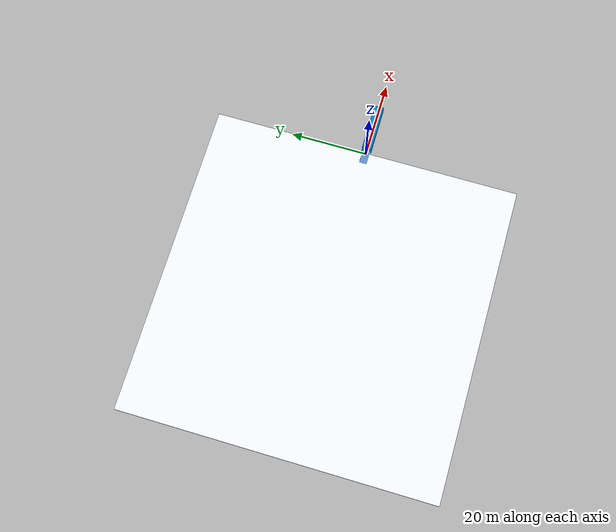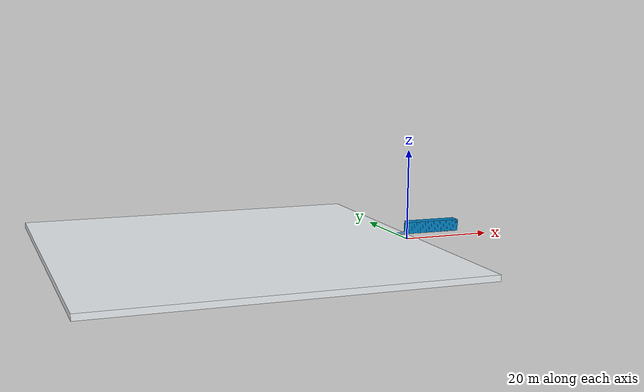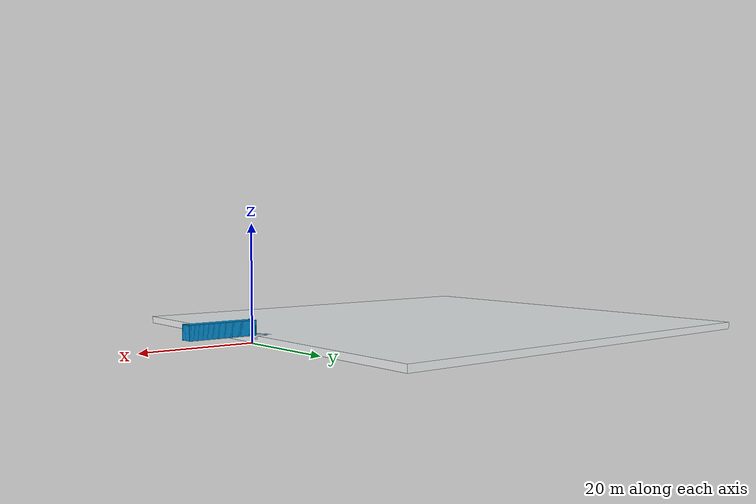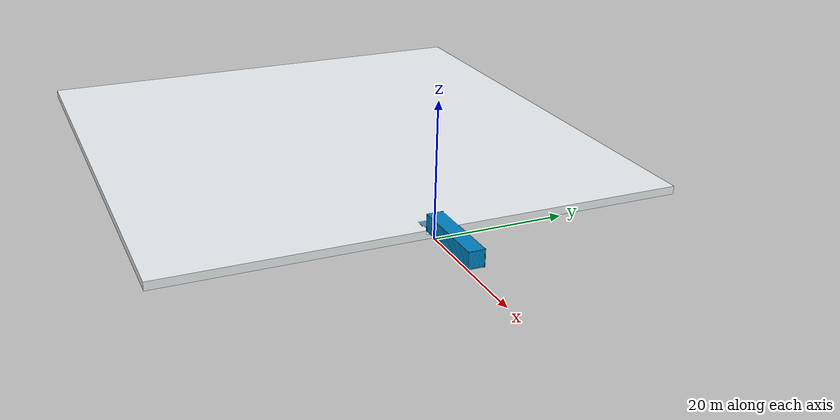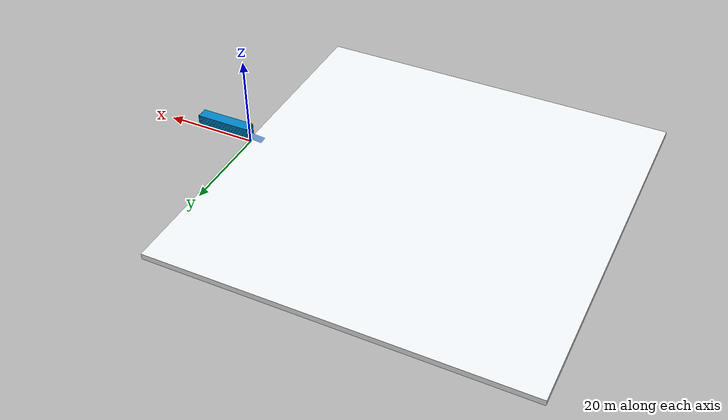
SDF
<?xml version="1.0" ?>
<sdf version="1.6">
  <model name="warehouse">
    <static>true</static>
    <link name="link">
      <collision name="collision">
        <geometry>
          <mesh>
            <uri>model://warehouse_02/meshes/warehouse_sim_9.dae</uri>
          </mesh>
        </geometry>
      </collision>
      <visual name="visual">
        <geometry>
          <mesh>
            <uri>model://warehouse_02/meshes/warehouse_sim_9.dae</uri>
          </mesh>
        </geometry>
      </visual>
    </link>
  </model>
</sdf>
